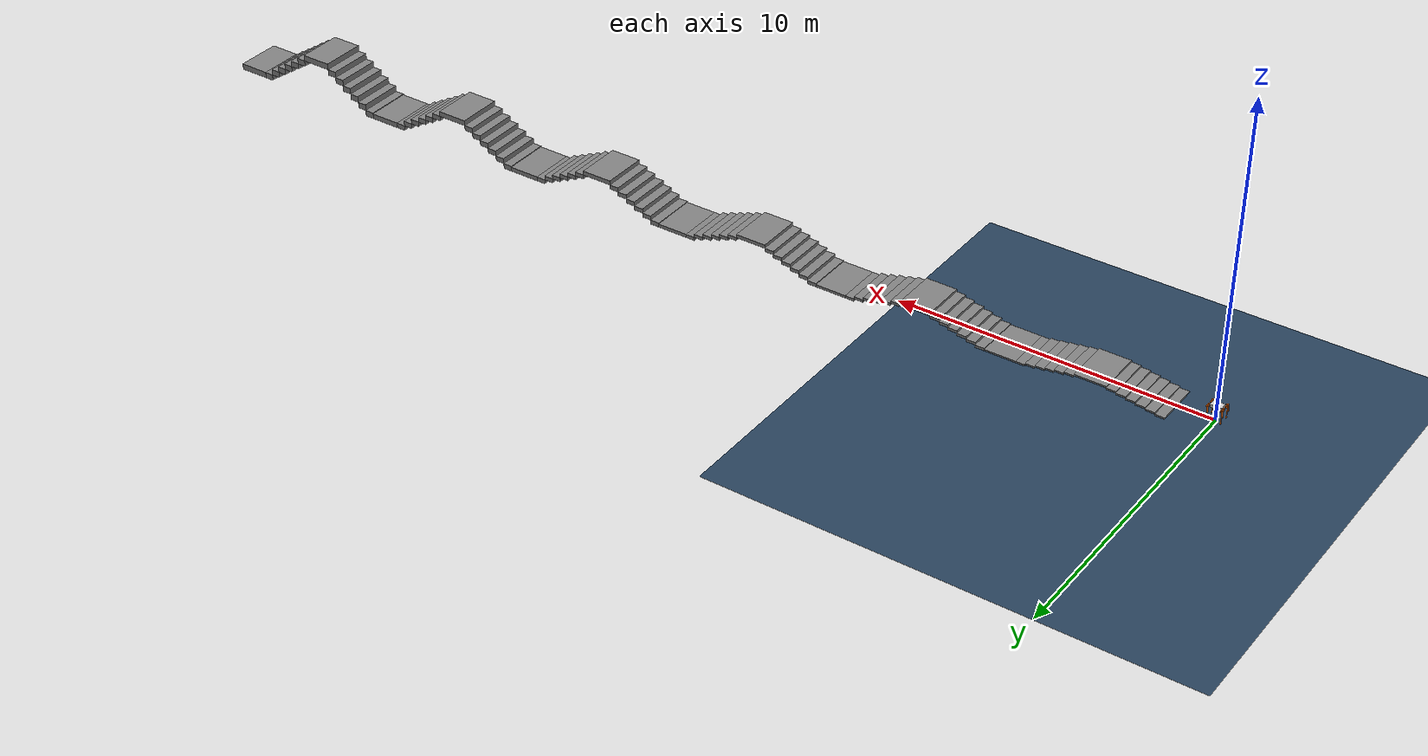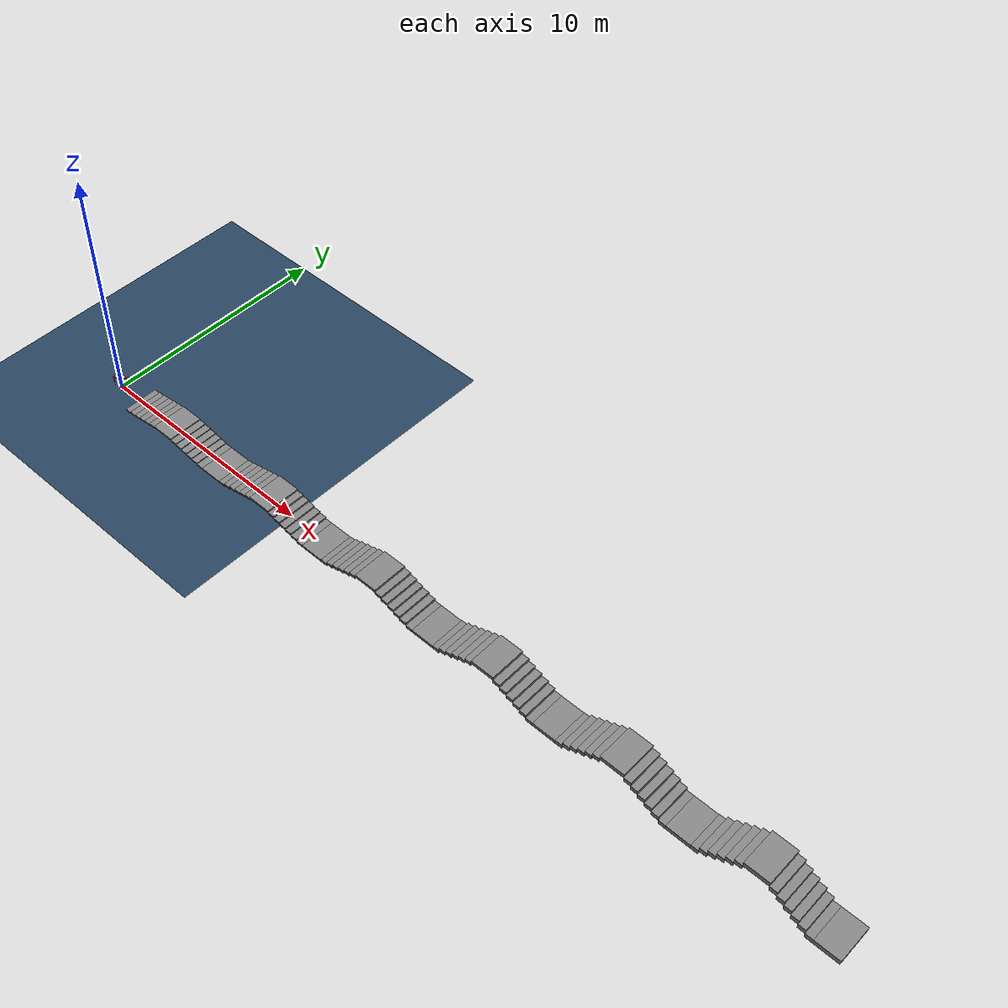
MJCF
<mujoco model="z2 scene">
  <include file="mjmodel.xml"/>

  <statistic center="0 0 0.1" extent="0.8" />

  <default>
    <geom friction="2.0 0.05 0.001" />
  </default>
  <visual>
    <headlight diffuse="0.6 0.6 0.6" ambient="0.3 0.3 0.3" specular="0 0 0" />
    <rgba haze="0.15 0.25 0.35 1" />
    <global azimuth="-130" elevation="-20" />
  </visual>

  <asset>
    <texture type="skybox" builtin="gradient" rgb1="0.3 0.5 0.7" rgb2="0 0 0" width="512" height="3072" />
    <texture type="2d" name="groundplane" builtin="checker" mark="edge" rgb1="0.2 0.3 0.4" rgb2="0.1 0.2 0.3" markrgb="0.8 0.8 0.8" width="300" height="300" />
    <material name="groundplane" texture="groundplane" texuniform="true" texrepeat="5 5" reflectance="0.2" />
  </asset>

  <worldbody>
    <light pos="0 0 1.5" dir="0 0 -1" directional="true" />
    <geom name="floor" size="0 0 0.05" type="plane" material="groundplane" />

    <geom pos="1.3 0.0 0.025" type="box" size="0.15 0.75 0.025" quat="1.0 0.0 0.0 0.0" />
    <geom pos="1.6 0.0 0.07500000000000001" type="box" size="0.15 0.75 0.025" quat="1.0 0.0 0.0 0.0" />
    <geom pos="1.9 0.0 0.125" type="box" size="0.15 0.75 0.025" quat="1.0 0.0 0.0 0.0" />
    <geom pos="2.2 0.0 0.17500000000000002" type="box" size="0.15 0.75 0.025" quat="1.0 0.0 0.0 0.0" />
    <geom pos="2.5 0.0 0.225" type="box" size="0.15 0.75 0.025" quat="1.0 0.0 0.0 0.0" />
    <geom pos="2.8 0.0 0.275" type="box" size="0.15 0.75 0.025" quat="1.0 0.0 0.0 0.0" />
    <geom pos="3.4499999999999997 0.0 0.32500000000000007" type="box" size="0.5 0.75 0.025" quat="1.0 0.0 0.0 0.0" />
    <geom pos="4.1 0.0 0.275" type="box" size="0.15 0.75 0.025" quat="1.0 0.0 0.0 0.0" />
    <geom pos="4.3999999999999995 0.0 0.22500000000000003" type="box" size="0.15 0.75 0.025" quat="1.0 0.0 0.0 0.0" />
    <geom pos="4.699999999999999 0.0 0.17500000000000002" type="box" size="0.15 0.75 0.025" quat="1.0 0.0 0.0 0.0" />
    <geom pos="5.0 0.0 0.125" type="box" size="0.15 0.75 0.025" quat="1.0 0.0 0.0 0.0" />
    <geom pos="5.3 0.0 0.07500000000000001" type="box" size="0.15 0.75 0.025" quat="1.0 0.0 0.0 0.0" />
    <geom pos="5.6 0.0 0.025000000000000022" type="box" size="0.15 0.75 0.025" quat="1.0 0.0 0.0 0.0" />
    <geom pos="6.25 0.0 0.025" type="box" size="0.5 0.75 0.025" quat="1.0 0.0 0.0 0.0" />
    <geom pos="6.898999999999999 0.0 0.04" type="box" size="0.15 0.75 0.04" quat="1.0 0.0 0.0 0.0" />
    <geom pos="7.198999999999999 0.0 0.12" type="box" size="0.15 0.75 0.04" quat="1.0 0.0 0.0 0.0" />
    <geom pos="7.498999999999999 0.0 0.2" type="box" size="0.15 0.75 0.04" quat="1.0 0.0 0.0 0.0" />
    <geom pos="7.7989999999999995 0.0 0.28" type="box" size="0.15 0.75 0.04" quat="1.0 0.0 0.0 0.0" />
    <geom pos="8.099 0.0 0.36" type="box" size="0.15 0.75 0.04" quat="1.0 0.0 0.0 0.0" />
    <geom pos="8.399 0.0 0.44" type="box" size="0.15 0.75 0.04" quat="1.0 0.0 0.0 0.0" />
    <geom pos="9.049 0.0 0.52" type="box" size="0.5 0.75 0.04" quat="1.0 0.0 0.0 0.0" />
    <geom pos="9.698999999999998 0.0 0.44" type="box" size="0.15 0.75 0.04" quat="1.0 0.0 0.0 0.0" />
    <geom pos="9.998999999999999 0.0 0.36" type="box" size="0.15 0.75 0.04" quat="1.0 0.0 0.0 0.0" />
    <geom pos="10.299 0.0 0.28" type="box" size="0.15 0.75 0.04" quat="1.0 0.0 0.0 0.0" />
    <geom pos="10.598999999999998 0.0 0.2" type="box" size="0.15 0.75 0.04" quat="1.0 0.0 0.0 0.0" />
    <geom pos="10.899 0.0 0.12" type="box" size="0.15 0.75 0.04" quat="1.0 0.0 0.0 0.0" />
    <geom pos="11.198999999999998 0.0 0.03999999999999998" type="box" size="0.15 0.75 0.04" quat="1.0 0.0 0.0 0.0" />
    <geom pos="11.849 0.0 0.04" type="box" size="0.5 0.75 0.04" quat="1.0 0.0 0.0 0.0" />
    <geom pos="12.498 0.0 0.055" type="box" size="0.15 0.75 0.055" quat="1.0 0.0 0.0 0.0" />
    <geom pos="12.797999999999998 0.0 0.165" type="box" size="0.15 0.75 0.055" quat="1.0 0.0 0.0 0.0" />
    <geom pos="13.097999999999999 0.0 0.275" type="box" size="0.15 0.75 0.055" quat="1.0 0.0 0.0 0.0" />
    <geom pos="13.397999999999998 0.0 0.385" type="box" size="0.15 0.75 0.055" quat="1.0 0.0 0.0 0.0" />
    <geom pos="13.697999999999999 0.0 0.495" type="box" size="0.15 0.75 0.055" quat="1.0 0.0 0.0 0.0" />
    <geom pos="13.997999999999998 0.0 0.605" type="box" size="0.15 0.75 0.055" quat="1.0 0.0 0.0 0.0" />
    <geom pos="14.647999999999998 0.0 0.7150000000000001" type="box" size="0.5 0.75 0.055" quat="1.0 0.0 0.0 0.0" />
    <geom pos="15.297999999999998 0.0 0.605" type="box" size="0.15 0.75 0.055" quat="1.0 0.0 0.0 0.0" />
    <geom pos="15.597999999999999 0.0 0.495" type="box" size="0.15 0.75 0.055" quat="1.0 0.0 0.0 0.0" />
    <geom pos="15.897999999999998 0.0 0.385" type="box" size="0.15 0.75 0.055" quat="1.0 0.0 0.0 0.0" />
    <geom pos="16.197999999999997 0.0 0.27499999999999997" type="box" size="0.15 0.75 0.055" quat="1.0 0.0 0.0 0.0" />
    <geom pos="16.497999999999998 0.0 0.16499999999999998" type="box" size="0.15 0.75 0.055" quat="1.0 0.0 0.0 0.0" />
    <geom pos="16.798 0.0 0.05499999999999994" type="box" size="0.15 0.75 0.055" quat="1.0 0.0 0.0 0.0" />
    <geom pos="17.448 0.0 0.055" type="box" size="0.5 0.75 0.055" quat="1.0 0.0 0.0 0.0" />
    <geom pos="18.096999999999998 0.0 0.07" type="box" size="0.15 0.75 0.07" quat="1.0 0.0 0.0 0.0" />
    <geom pos="18.397 0.0 0.21000000000000002" type="box" size="0.15 0.75 0.07" quat="1.0 0.0 0.0 0.0" />
    <geom pos="18.696999999999996 0.0 0.35000000000000003" type="box" size="0.15 0.75 0.07" quat="1.0 0.0 0.0 0.0" />
    <geom pos="18.996999999999996 0.0 0.49000000000000005" type="box" size="0.15 0.75 0.07" quat="1.0 0.0 0.0 0.0" />
    <geom pos="19.296999999999997 0.0 0.6300000000000001" type="box" size="0.15 0.75 0.07" quat="1.0 0.0 0.0 0.0" />
    <geom pos="19.596999999999998 0.0 0.77" type="box" size="0.15 0.75 0.07" quat="1.0 0.0 0.0 0.0" />
    <geom pos="20.246999999999996 0.0 0.9100000000000001" type="box" size="0.5 0.75 0.07" quat="1.0 0.0 0.0 0.0" />
    <geom pos="20.897 0.0 0.77" type="box" size="0.15 0.75 0.07" quat="1.0 0.0 0.0 0.0" />
    <geom pos="21.196999999999996 0.0 0.63" type="box" size="0.15 0.75 0.07" quat="1.0 0.0 0.0 0.0" />
    <geom pos="21.496999999999996 0.0 0.49" type="box" size="0.15 0.75 0.07" quat="1.0 0.0 0.0 0.0" />
    <geom pos="21.796999999999997 0.0 0.35" type="box" size="0.15 0.75 0.07" quat="1.0 0.0 0.0 0.0" />
    <geom pos="22.096999999999998 0.0 0.20999999999999996" type="box" size="0.15 0.75 0.07" quat="1.0 0.0 0.0 0.0" />
    <geom pos="22.397 0.0 0.06999999999999995" type="box" size="0.15 0.75 0.07" quat="1.0 0.0 0.0 0.0" />
    <geom pos="23.046999999999997 0.0 0.07" type="box" size="0.5 0.75 0.07" quat="1.0 0.0 0.0 0.0" />
    <geom pos="23.695999999999998 0.0 0.085" type="box" size="0.15 0.75 0.085" quat="1.0 0.0 0.0 0.0" />
    <geom pos="23.996 0.0 0.255" type="box" size="0.15 0.75 0.085" quat="1.0 0.0 0.0 0.0" />
    <geom pos="24.295999999999996 0.0 0.42500000000000004" type="box" size="0.15 0.75 0.085" quat="1.0 0.0 0.0 0.0" />
    <geom pos="24.595999999999997 0.0 0.5950000000000001" type="box" size="0.15 0.75 0.085" quat="1.0 0.0 0.0 0.0" />
    <geom pos="24.895999999999997 0.0 0.765" type="box" size="0.15 0.75 0.085" quat="1.0 0.0 0.0 0.0" />
    <geom pos="25.195999999999998 0.0 0.935" type="box" size="0.15 0.75 0.085" quat="1.0 0.0 0.0 0.0" />
    <geom pos="25.845999999999997 0.0 1.105" type="box" size="0.5 0.75 0.085" quat="1.0 0.0 0.0 0.0" />
    <geom pos="26.495999999999995 0.0 0.935" type="box" size="0.15 0.75 0.085" quat="1.0 0.0 0.0 0.0" />
    <geom pos="26.795999999999996 0.0 0.765" type="box" size="0.15 0.75 0.085" quat="1.0 0.0 0.0 0.0" />
    <geom pos="27.095999999999997 0.0 0.595" type="box" size="0.15 0.75 0.085" quat="1.0 0.0 0.0 0.0" />
    <geom pos="27.395999999999997 0.0 0.42500000000000004" type="box" size="0.15 0.75 0.085" quat="1.0 0.0 0.0 0.0" />
    <geom pos="27.695999999999998 0.0 0.255" type="box" size="0.15 0.75 0.085" quat="1.0 0.0 0.0 0.0" />
    <geom pos="27.995999999999995 0.0 0.08499999999999996" type="box" size="0.15 0.75 0.085" quat="1.0 0.0 0.0 0.0" />
    <geom pos="28.645999999999997 0.0 0.085" type="box" size="0.5 0.75 0.085" quat="1.0 0.0 0.0 0.0" />
    <geom pos="29.294999999999998 0.0 0.1" type="box" size="0.15 0.75 0.1" quat="1.0 0.0 0.0 0.0" />
    <geom pos="29.595 0.0 0.30000000000000004" type="box" size="0.15 0.75 0.1" quat="1.0 0.0 0.0 0.0" />
    <geom pos="29.894999999999996 0.0 0.5" type="box" size="0.15 0.75 0.1" quat="1.0 0.0 0.0 0.0" />
    <geom pos="30.194999999999997 0.0 0.7000000000000001" type="box" size="0.15 0.75 0.1" quat="1.0 0.0 0.0 0.0" />
    <geom pos="30.494999999999997 0.0 0.9" type="box" size="0.15 0.75 0.1" quat="1.0 0.0 0.0 0.0" />
    <geom pos="30.794999999999998 0.0 1.1" type="box" size="0.15 0.75 0.1" quat="1.0 0.0 0.0 0.0" />
    <geom pos="31.444999999999997 0.0 1.3000000000000003" type="box" size="0.5 0.75 0.1" quat="1.0 0.0 0.0 0.0" />
    <geom pos="32.095 0.0 1.1" type="box" size="0.15 0.75 0.1" quat="1.0 0.0 0.0 0.0" />
    <geom pos="32.394999999999996 0.0 0.9000000000000001" type="box" size="0.15 0.75 0.1" quat="1.0 0.0 0.0 0.0" />
    <geom pos="32.695 0.0 0.7000000000000001" type="box" size="0.15 0.75 0.1" quat="1.0 0.0 0.0 0.0" />
    <geom pos="32.995 0.0 0.5" type="box" size="0.15 0.75 0.1" quat="1.0 0.0 0.0 0.0" />
    <geom pos="33.294999999999995 0.0 0.30000000000000004" type="box" size="0.15 0.75 0.1" quat="1.0 0.0 0.0 0.0" />
    <geom pos="33.595 0.0 0.10000000000000009" type="box" size="0.15 0.75 0.1" quat="1.0 0.0 0.0 0.0" />
    <geom pos="34.245 0.0 0.1" type="box" size="0.5 0.75 0.1" quat="1.0 0.0 0.0 0.0" />
  </worldbody>
</mujoco>

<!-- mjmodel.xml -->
<mujoco model="quadruped_robot">
  <compiler angle="radian" inertiafromgeom="auto"/>

  <!-- 优化的仿真参数 -->
  <option timestep="0.005" iterations="50" solver="Newton" tolerance="1e-10"/>

  <!-- 默认参数设置 -->
  <default>
    <joint damping="0.1" frictionloss="0.01"/>
    <geom friction="0.8 0.02 0.01" margin="0.001" gap="0.0"/>
    <motor ctrllimited="true" ctrlrange="-33.5 33.5"/>
  </default>

  <!-- 资源 -->
  <asset>
    <texture name="grid" type="2d" builtin="checker" rgb1=".1 .2 .3" rgb2=".2 .3 .4" width="300" height="300"/>
    <material name="grid" texture="grid" texrepeat="8 8" reflectance=".2"/>
  </asset>

  <worldbody>
    <!-- 地面 -->
    <geom name="ground" size="10 10 0.1" type="plane" material="grid"/>
    <light pos="0 0 3" dir="0 0 -1"/>

    <!-- 机器人主体 -->
    <body name="base" pos="0 0 0.5">
      <site name="imu_site" pos="0 0 0.05" size="0.01"/>
      <!-- 浮动基座 -->
      <freejoint name="floating_base"/>
      <!-- Third-person chase camera rigidly attached to base -->
      <camera name="chase_cam" pos="-2 0 2" xyaxes="0 -1 0 1 0 1"/>

      <!-- 主体几何形状（MuJoCo将自动计算惯性） -->
      <geom name="trunk" size="0.171 0.1185 0.0435" type="box" rgba="0.8 0.8 0.8 1" mass="3.728"/>

      <!-- 前左腿 (FL) -->
      <body name="FL_hip" pos="0.215 0.075 0">
        <joint name="FL_hip_joint" pos="0 0 0" axis="1 0 0" range="-0.802851 0.802851"
               damping="0.1" frictionloss="0.01"/>
        <geom name="FL_hip_geom" size="0.035 0.01" quat="0.707107 0.707107 0 0" type="cylinder"
              rgba="1 0.423529 0.0392157 1" mass="0.614"/>

        <body name="FL_thigh" pos="0 0.09914 0">
          <joint name="FL_thigh_joint" pos="0 0 0" axis="0 1 0" range="-1.0472 4.18879"
                 damping="0.15" frictionloss="0.01"/>
          <geom name="FL_thigh_geom1" size="0.1 0.015 0.017" pos="-0.015 0 -0.1" quat="0.670882 0 0.741564 0"
                type="box" rgba="1 0.423529 0.0392157 1" mass="0.8"/>
          <geom name="FL_thigh_geom2" size="0.041 0.02" pos="0 -0.008 0" quat="0.707107 0.707107 0 0"
                type="cylinder" rgba="1 0.423529 0.0392157 1" mass="0.257"/>

          <body name="FL_calf" pos="0 0 -0.2">
            <joint name="FL_calf_joint" pos="0 0 0" axis="0 1 0" range="-2.69653 -0.916298"
                   damping="0.1" frictionloss="0.01"/>
            <geom name="FL_calf_geom" size="0.1051 0.008 0.008" pos="0 0 -0.1051" quat="0.707107 0 0.707107 0"
                  type="box" rgba="1 0.423529 0.0392157 1" mass="0.143"/>
            <geom name="FL_foot" size="0.0225" pos="0 0 -0.2102" rgba="1 0.423529 0.0392157 1"
                  friction="1.2 0.05 0.01" mass="0.01"/>
          </body>
        </body>
      </body>

      <!-- 后左腿 (RL) -->
      <body name="RL_hip" pos="-0.215 0.075 0">
        <joint name="RL_hip_joint" pos="0 0 0" axis="1 0 0" range="-0.802851 0.802851"
               damping="0.1" frictionloss="0.01"/>
        <geom name="RL_hip_geom" size="0.035 0.01" quat="0.707107 0.707107 0 0" type="cylinder"
              rgba="1 0.423529 0.0392157 1" mass="0.614"/>

        <body name="RL_thigh" pos="0 0.09914 0">
          <joint name="RL_thigh_joint" pos="0 0 0" axis="0 1 0" range="-1.0472 4.18879"
                 damping="0.15" frictionloss="0.01"/>
          <geom name="RL_thigh_geom1" size="0.1 0.015 0.017" pos="-0.015 0 -0.1" quat="0.670882 0 0.741564 0"
                type="box" rgba="1 0.423529 0.0392157 1" mass="0.8"/>
          <geom name="RL_thigh_geom2" size="0.041 0.02" pos="0 -0.008 0" quat="0.707107 0.707107 0 0"
                type="cylinder" rgba="1 0.423529 0.0392157 1" mass="0.257"/>

          <body name="RL_calf" pos="0 0 -0.2">
            <joint name="RL_calf_joint" pos="0 0 0" axis="0 1 0" range="-2.69653 -0.916298"
                   damping="0.1" frictionloss="0.01"/>
            <geom name="RL_calf_geom" size="0.1051 0.008 0.008" pos="0 0 -0.1051" quat="0.707107 0 0.707107 0"
                  type="box" rgba="1 0.423529 0.0392157 1" mass="0.143"/>
            <geom name="RL_foot" size="0.0225" pos="0 0 -0.2102" rgba="1 0.423529 0.0392157 1"
                  friction="1.2 0.05 0.01" mass="0.01"/>
          </body>
        </body>
      </body>

      <!-- 前右腿 (FR) -->
      <body name="FR_hip" pos="0.215 -0.075 0">
        <joint name="FR_hip_joint" pos="0 0 0" axis="1 0 0" range="-0.802851 0.802851"
               damping="0.1" frictionloss="0.01"/>
        <geom name="FR_hip_geom" size="0.035 0.01" quat="0.707107 0.707107 0 0" type="cylinder"
              rgba="1 0.423529 0.0392157 1" mass="0.614"/>

        <body name="FR_thigh" pos="0 -0.09914 0">
          <joint name="FR_thigh_joint" pos="0 0 0" axis="0 1 0" range="-1.0472 4.18879"
                 damping="0.15" frictionloss="0.01"/>
          <geom name="FR_thigh_geom1" size="0.1 0.015 0.017" pos="-0.015 0 -0.1" quat="0.670882 0 0.741564 0"
                type="box" rgba="1 0.423529 0.0392157 1" mass="0.8"/>
          <geom name="FR_thigh_geom2" size="0.041 0.02" pos="0 0.008 0" quat="0.707107 0.707107 0 0"
                type="cylinder" rgba="1 0.423529 0.0392157 1" mass="0.257"/>

          <body name="FR_calf" pos="0 0 -0.2">
            <joint name="FR_calf_joint" pos="0 0 0" axis="0 1 0" range="-2.69653 -0.916298"
                   damping="0.1" frictionloss="0.01"/>
            <geom name="FR_calf_geom" size="0.1051 0.008 0.008" pos="0 0 -0.1051" quat="0.707107 0 0.707107 0"
                  type="box" rgba="1 0.423529 0.0392157 1" mass="0.143"/>
            <geom name="FR_foot" size="0.0225" pos="0 0 -0.2102" rgba="1 0.423529 0.0392157 1"
                  friction="1.2 0.05 0.01" mass="0.01"/>
          </body>
        </body>
      </body>

      <!-- 后右腿 (RR) -->
      <body name="RR_hip" pos="-0.215 -0.075 0">
        <joint name="RR_hip_joint" pos="0 0 0" axis="1 0 0" range="-0.802851 0.802851"
               damping="0.1" frictionloss="0.01"/>
        <geom name="RR_hip_geom" size="0.035 0.01" quat="0.707107 0.707107 0 0" type="cylinder"
              rgba="1 0.423529 0.0392157 1" mass="0.614"/>

        <body name="RR_thigh" pos="0 -0.09914 0">
          <joint name="RR_thigh_joint" pos="0 0 0" axis="0 1 0" range="-1.0472 4.18879"
                 damping="0.15" frictionloss="0.01"/>
          <geom name="RR_thigh_geom1" size="0.1 0.015 0.017" pos="-0.015 0 -0.1" quat="0.670882 0 0.741564 0"
                type="box" rgba="1 0.423529 0.0392157 1" mass="0.8"/>
          <geom name="RR_thigh_geom2" size="0.041 0.02" pos="0 0.008 0" quat="0.707107 0.707107 0 0"
                type="cylinder" rgba="1 0.423529 0.0392157 1" mass="0.257"/>

          <body name="RR_calf" pos="0 0 -0.2">
            <joint name="RR_calf_joint" pos="0 0 0" axis="0 1 0" range="-2.69653 -0.916298"
                   damping="0.1" frictionloss="0.01"/>
            <geom name="RR_calf_geom" size="0.1051 0.008 0.008" pos="0 0 -0.1051" quat="0.707107 0 0.707107 0"
                  type="box" rgba="1 0.423529 0.0392157 1" mass="0.143"/>
            <geom name="RR_foot" size="0.0225" pos="0 0 -0.2102" rgba="1 0.423529 0.0392157 1"
                  friction="1.2 0.05 0.01" mass="0.01"/>
          </body>
        </body>
      </body>
    </body>
  </worldbody>

  <!-- 电机驱动器 -->
  <actuator>
    <!-- 前左腿电机 -->
    <motor name="FL_hip_motor" joint="FL_hip_joint" gear="1"/>
    <motor name="FL_thigh_motor" joint="FL_thigh_joint" gear="1"/>
    <motor name="FL_calf_motor" joint="FL_calf_joint" gear="1"/>

    <!-- 后左腿电机 -->
    <motor name="RL_hip_motor" joint="RL_hip_joint" gear="1"/>
    <motor name="RL_thigh_motor" joint="RL_thigh_joint" gear="1"/>
    <motor name="RL_calf_motor" joint="RL_calf_joint" gear="1"/>

    <!-- 前右腿电机 -->
    <motor name="FR_hip_motor" joint="FR_hip_joint" gear="1"/>
    <motor name="FR_thigh_motor" joint="FR_thigh_joint" gear="1"/>
    <motor name="FR_calf_motor" joint="FR_calf_joint" gear="1"/>

    <!-- 后右腿电机 -->
    <motor name="RR_hip_motor" joint="RR_hip_joint" gear="1"/>
    <motor name="RR_thigh_motor" joint="RR_thigh_joint" gear="1"/>
    <motor name="RR_calf_motor" joint="RR_calf_joint" gear="1"/>
  </actuator>

  <sensor>
    <!-- IMU传感器 - 必须通过site定位 -->
    <!-- 加速度计 - 测量躯干坐标系下的加速度（包含重力） -->
    <accelerometer name="base_accelerometer" site="imu_site"/>
    <!-- 陀螺仪 - 测量躯干坐标系下的角速度 -->
    <gyro name="base_gyro" site="imu_site"/>
    <!-- 躯干线速度传感器 - 用于调试和验证 -->
    <velocimeter name="base_velocimeter" site="imu_site"/>
  </sensor>
</mujoco>
